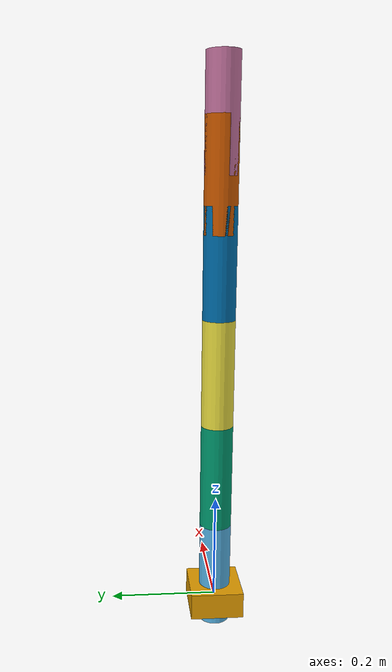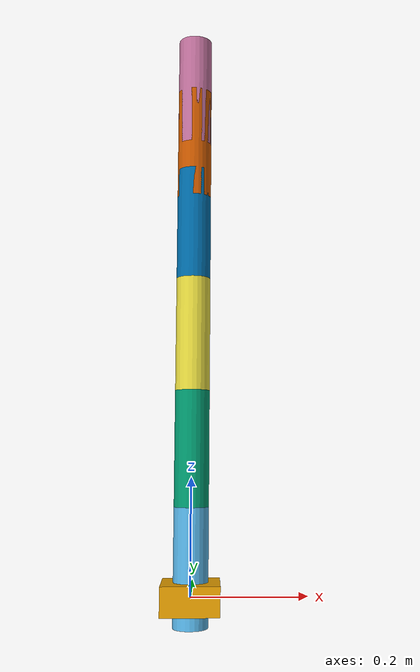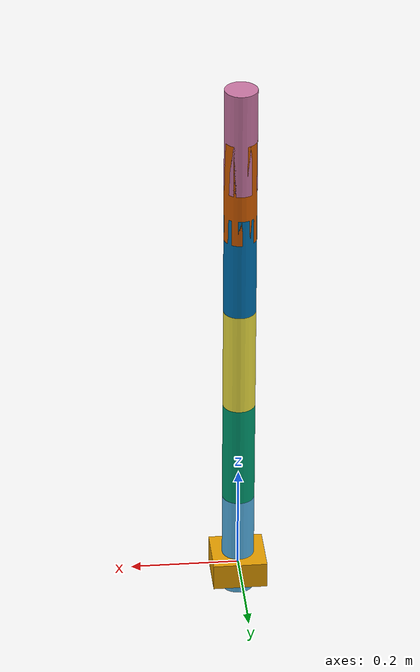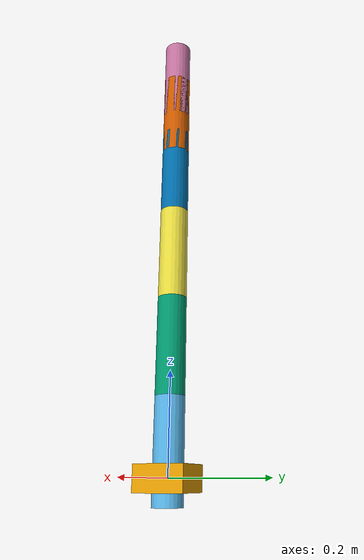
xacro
<?xml version="1.0"?>
<!-- Replace with actual URDF from cobot supplier -->
<robot name="cobot" xmlns:xacro="http://www.ros.org/wiki/xacro">

  <link name="base_link">
    <visual>
      <geometry><box size="0.1 0.1 0.05"/></geometry>
    </visual>
  </link>

  <xacro:macro name="arm_link" params="name">
    <link name="${name}">
      <visual>
        <geometry><cylinder radius="0.03" length="0.2"/></geometry>
      </visual>
    </link>
  </xacro:macro>

  <xacro:arm_link name="link_1"/>
  <xacro:arm_link name="link_2"/>
  <xacro:arm_link name="link_3"/>
  <xacro:arm_link name="link_4"/>
  <xacro:arm_link name="link_5"/>
  <xacro:arm_link name="link_6"/>

  <joint name="joint_1" type="revolute">
    <parent link="base_link"/><child link="link_1"/>
    <origin xyz="0 0 0.05"/><axis xyz="0 0 1"/>
    <limit lower="-3.14" upper="3.14" effort="100" velocity="1.0"/>
  </joint>
  <joint name="joint_2" type="revolute">
    <parent link="link_1"/><child link="link_2"/>
    <origin xyz="0 0 0.2"/><axis xyz="0 1 0"/>
    <limit lower="-3.14" upper="3.14" effort="100" velocity="1.0"/>
  </joint>
  <joint name="joint_3" type="revolute">
    <parent link="link_2"/><child link="link_3"/>
    <origin xyz="0 0 0.2"/><axis xyz="0 1 0"/>
    <limit lower="-3.14" upper="3.14" effort="100" velocity="1.0"/>
  </joint>
  <joint name="joint_4" type="revolute">
    <parent link="link_3"/><child link="link_4"/>
    <origin xyz="0 0 0.2"/><axis xyz="0 0 1"/>
    <limit lower="-3.14" upper="3.14" effort="100" velocity="1.0"/>
  </joint>
  <joint name="joint_5" type="revolute">
    <parent link="link_4"/><child link="link_5"/>
    <origin xyz="0 0 0.15"/><axis xyz="0 1 0"/>
    <limit lower="-3.14" upper="3.14" effort="100" velocity="1.0"/>
  </joint>
  <joint name="joint_6" type="revolute">
    <parent link="link_5"/><child link="link_6"/>
    <origin xyz="0 0 0.1"/><axis xyz="0 0 1"/>
    <limit lower="-3.14" upper="3.14" effort="100" velocity="1.0"/>
  </joint>

  <link name="tool0"/>
  <joint name="tool0_joint" type="fixed">
    <parent link="link_6"/><child link="tool0"/>
    <origin xyz="0 0 0.05"/>
  </joint>

  <link name="lidar_link"/>
  <joint name="lidar_joint" type="fixed">
    <parent link="base_link"/><child link="lidar_link"/>
    <origin xyz="0 0 0.5"/>
  </joint>

  <link name="cam0_link"/>
  <joint name="cam0_joint" type="fixed">
    <parent link="base_link"/><child link="cam0_link"/>
    <origin xyz="0.3 0.1 0.4" rpy="0 0.3 0"/>
  </joint>

  <link name="cam1_link"/>
  <joint name="cam1_joint" type="fixed">
    <parent link="base_link"/><child link="cam1_link"/>
    <origin xyz="0.3 -0.1 0.4" rpy="0 0.3 0"/>
  </joint>

</robot>
